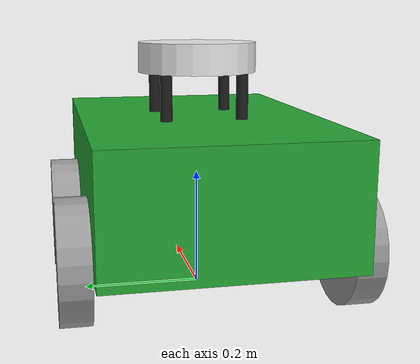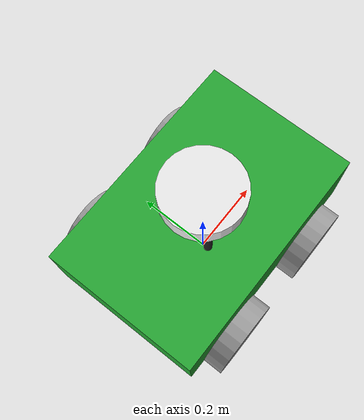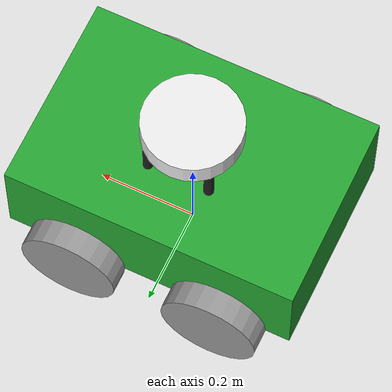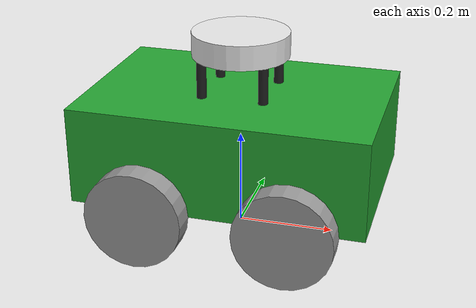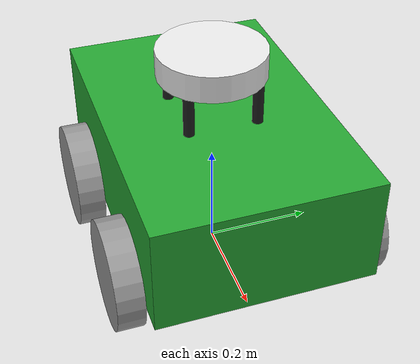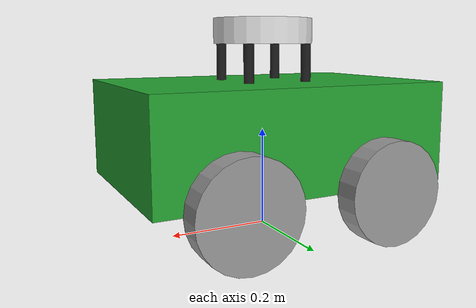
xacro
<?xml version="1.0"?>
<robot xmlns:xacro="http://www.ros.org/wiki/xacro">

    <!-- Define properties -->
    <xacro:property name="base_length" value="0.6" />
    <xacro:property name="base_width" value="0.4" />
    <xacro:property name="base_height" value="0.2" />
    <xacro:property name="wheel_radius" value="0.1" />
    <xacro:property name="wheel_length" value="0.05" />
    <xacro:property name="stand_pillar_radius" value="0.01" />
    <xacro:property name="stand_pillar_length" value="0.23" />

    <!-- Base footprint -->
    <link name="base_footprint" />

    <!-- Base link -->
    <link name="base_link">
        <visual>
            <geometry>
                <box size="${base_length} ${base_width} ${base_height}" />
            </geometry>
            <origin xyz="0 0 ${base_height / 2.0}" rpy="0 0 0" />
            <material name="green" />
        </visual>
        <xacro:cylinder_inertia m="5.0" r="${base_length}" h="${base_height}"
                                xyz="0 0 ${2 * base_height / 2.0}" rpy="0 0 0" />
        <collision>
            <geometry>
                <box size="0.6 0.4 0.2" />
            </geometry>
            <origin xyz="0 0 0.1" rpy="0 0 0" />
        </collision>
    </link>

    <!-- Lidar link -->
    <link name="lidar">
        <visual>
            <geometry>
                <cylinder radius="${wheel_radius}" length="${wheel_length}" />
            </geometry>
            <origin xyz="0 0 0" rpy="0 0 0" />
            <material name="white" />
        </visual>
        <collision>
            <geometry>
                <box size="0.2 0.2 0.05" />
            </geometry>
            <origin xyz="0 0 0" rpy="0 0 0" />
        </collision>
    </link>

    <!-- Wheel link macro -->
    <xacro:macro name="wheel_link" params="prefix">
        <link name="${prefix}_wheel">
            <visual>
                <geometry>
                    <cylinder radius="${wheel_radius}" length="${wheel_length}" />
                </geometry>
                <origin xyz="0 0 0" rpy="${pi / 2.0} 0 0" />
                <material name="gray" />
            </visual>
            <collision>
                <geometry>
                    <cylinder radius="${wheel_radius}" length="${wheel_length}" />
                </geometry>
                <origin xyz="0 0 0" rpy="${pi / 2.0} 0 0" />
            </collision>
            <xacro:cylinder_inertia m="1.0" r="${wheel_radius}" h="${wheel_length}"
                                    xyz="0 0 0" rpy="${pi / 2.0} 0 0" />
        </link>
    </xacro:macro>

    <!-- Wheel link instances -->
    <xacro:wheel_link prefix="right_front" />
    <xacro:wheel_link prefix="left_front" />
    <xacro:wheel_link prefix="right_back" />
    <xacro:wheel_link prefix="left_back" />

    <!-- Stand macro -->
    <xacro:macro name="stand_pillar" params="prefix">
        <link name="${prefix}_stand_pillar">
            <visual>
                <geometry>
                    <cylinder radius="${stand_pillar_radius}" length="${stand_pillar_length}" />
                </geometry>
                <origin xyz="0 0 0" rpy="0 0 0" />
                <material name="black" />
            </visual>
            <collision>
                <geometry>
                    <cylinder radius="${stand_pillar_radius}" length="${stand_pillar_length}" />
                </geometry>
                <origin xyz="0 0 0" rpy="0 0 0" />
            </collision>
            <xacro:cylinder_inertia m="1.0" r="${stand_pillar_radius}" h="${stand_pillar_length}"
                                    xyz="0 0 0" rpy="0 0 0" />
        </link>
    </xacro:macro>

    <!-- Stand pillar instances -->
    <xacro:stand_pillar prefix="right_up" />
    <xacro:stand_pillar prefix="right_down" />
    <xacro:stand_pillar prefix="left_up" />
    <xacro:stand_pillar prefix="left_down" />

    <!-- base_footprint -->
    <joint name="base_joint" type="fixed">
        <parent link="base_footprint" />
        <child link="base_link" />
        <origin xyz="0 0 0.1" rpy="0 0 0" />
    </joint>

    <!-- Base to lidar joint -->
    <joint name="base_lidar_joint" type="fixed">
        <parent link="base_link" />
        <child link="lidar" />
        <origin xyz="0 0 0.3" rpy="0 0 0" />
    </joint>

    <!-- Wheel joints -->
    <joint name="base_left_wheel" type="continuous">
        <parent link="base_link" />
        <child link="left_front_wheel" />
        <origin xyz="-0.15 -0.225 0" rpy="0 0 0" />
        <axis xyz="0 1 0" />
    </joint>

    <joint name="base_right_wheel" type="continuous">
        <parent link="base_link" />
        <child link="right_front_wheel" />
        <origin xyz="-0.15 0.225 0" rpy="0 0 0" />
        <axis xyz="0 1 0" />
    </joint>

    <joint name="base_left_back_wheel" type="continuous">
        <parent link="base_link" />
        <child link="left_back_wheel" />
        <origin xyz="0.15 -0.225 0" rpy="0 0 0" />
        <axis xyz="0 1 0" />
    </joint>

    <joint name="base_right_back_wheel" type="continuous">
        <parent link="base_link" />
        <child link="right_back_wheel" />
        <origin xyz="0.15 0.225 0" rpy="0 0 0" />
        <axis xyz="0 1 0" />
    </joint>

    <!-- Stand pillar joints -->
    <joint name="stand_rightup_lidar" type="fixed">
        <parent link="base_link" />
        <child link="right_up_stand_pillar" />
        <origin xyz="0.0635 0.0635 0.2" rpy="0 0 0" />
    </joint>

    <joint name="stand_rightdown_lidar" type="fixed">
        <parent link="base_link" />
        <child link="right_down_stand_pillar" />
        <origin xyz="0.0635 -0.0635 0.2" rpy="0 0 0" />
    </joint>

    <joint name="stand_leftup_lidar" type="fixed">
        <parent link="base_link" />
        <child link="left_up_stand_pillar" />
        <origin xyz="-0.0635 0.0635 0.2" rpy="0 0 0" />
    </joint>

    <joint name="stand_leftdown_lidar" type="fixed">
        <parent link="base_link" />
        <child link="left_down_stand_pillar" />
        <origin xyz="-0.0635 -0.0635 0.2" rpy="0 0 0" />
    </joint>

</robot>
